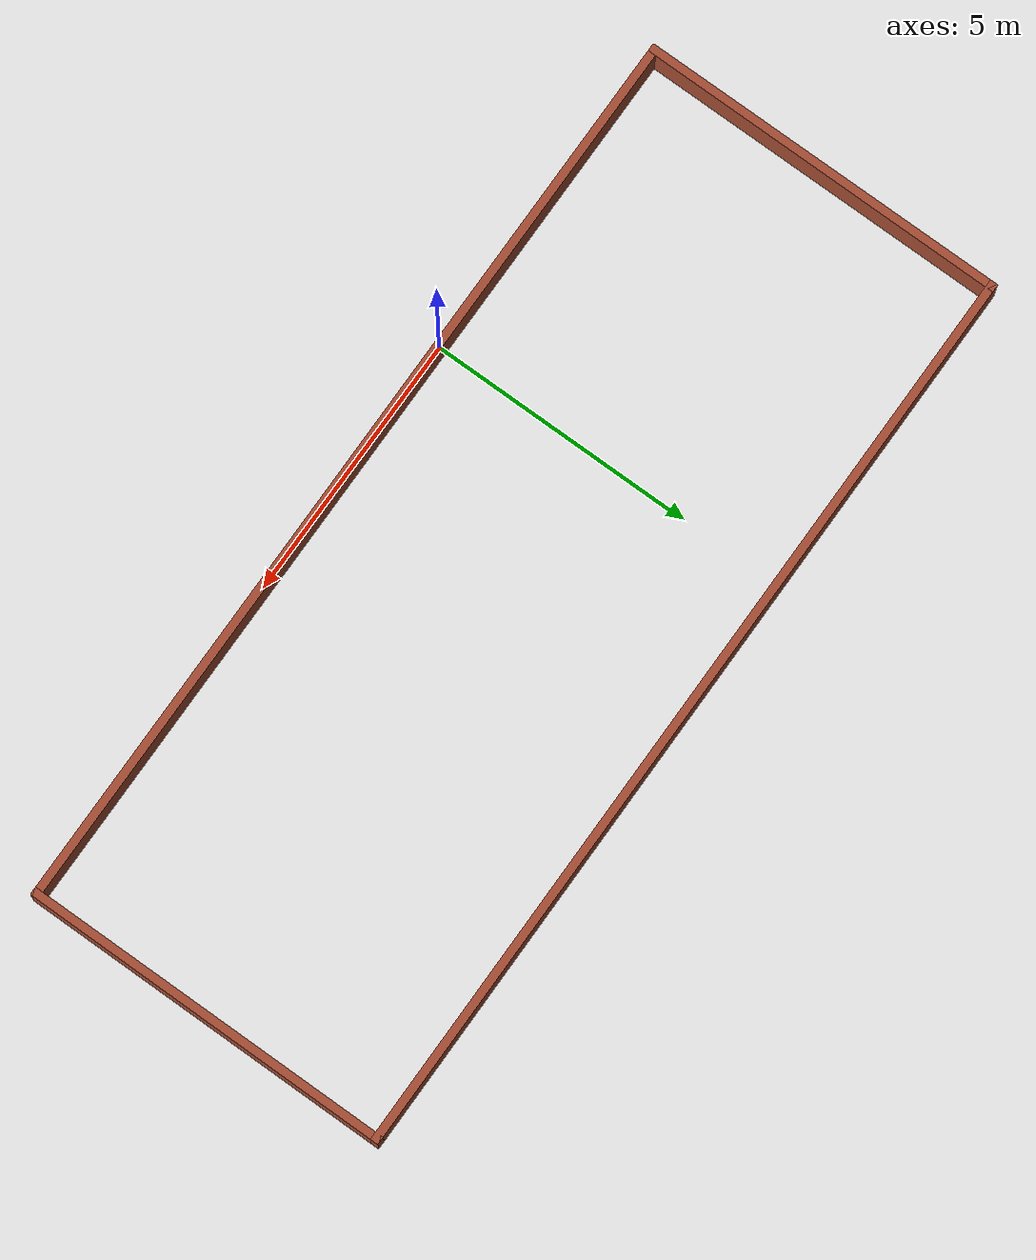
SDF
<?xml version='1.0'?>
<sdf version='1.6'>
  <model name='Arena'>
    <pose frame=''>2.663 3.5 0 0 -0 0</pose>
    <link name='Wall_1'>
      <collision name='Wall_1_Collision'>
        <geometry>
          <box>
            <size>7 0.15 1</size>
          </box>
        </geometry>
        <pose frame=''>0 0 0.5 0 -0 0</pose>
      </collision>
      <visual name='Wall_1_Visual'>
        <pose frame=''>0 0 0.5 0 -0 0</pose>
        <geometry>
          <box>
            <size>7 0.15 1</size>
          </box>
        </geometry>
        <material>
          <script>
            <uri>file://media/materials/scripts/gazebo.material</uri>
            <name>Gazebo/Bricks</name>
          </script>
          <ambient>0.760784 0.662745 0.627451 1</ambient>
        </material>
      </visual>
      <pose frame=''>-8.675 0 0 0 0 -1.5708</pose>
    </link>
    <link name='Wall_2'>
      <collision name='Wall_2_Collision'>
        <geometry>
          <box>
            <size>17.5 0.15 1</size>
          </box>
        </geometry>
        <pose frame=''>0 0 0.5 0 -0 0</pose>
      </collision>
      <visual name='Wall_2_Visual'>
        <pose frame=''>0 0 0.5 0 -0 0</pose>
        <geometry>
          <box>
            <size>17.5 0.15 1</size>
          </box>
        </geometry>
        <material>
          <script>
            <uri>file://media/materials/scripts/gazebo.material</uri>
            <name>Gazebo/Bricks</name>
          </script>
          <ambient>0.760784 0.662745 0.627451 1</ambient>
        </material>
      </visual>
      <pose frame=''>0 -3.425 0 0 -0 0</pose>
    </link>
    <link name='Wall_3'>
      <collision name='Wall_3_Collision'>
        <geometry>
          <box>
            <size>7 0.15 1</size>
          </box>
        </geometry>
        <pose frame=''>0 0 0.5 0 -0 0</pose>
      </collision>
      <visual name='Wall_3_Visual'>
        <pose frame=''>0 0 0.5 0 -0 0</pose>
        <geometry>
          <box>
            <size>7 0.15 1</size>
          </box>
        </geometry>
        <material>
          <script>
            <uri>file://media/materials/scripts/gazebo.material</uri>
            <name>Gazebo/Bricks</name>
          </script>
          <ambient>0.760784 0.662745 0.627451 1</ambient>
        </material>
      </visual>
      <pose frame=''>8.675 0 0 0 -0 1.5708</pose>
    </link>
    <link name='Wall_4'>
      <collision name='Wall_4_Collision'>
        <geometry>
          <box>
            <size>17.5 0.15 1</size>
          </box>
        </geometry>
        <pose frame=''>0 0 0.5 0 -0 0</pose>
      </collision>
      <visual name='Wall_4_Visual'>
        <pose frame=''>0 0 0.5 0 -0 0</pose>
        <geometry>
          <box>
            <size>17.5 0.15 1</size>
          </box>
        </geometry>
        <material>
          <script>
            <uri>file://media/materials/scripts/gazebo.material</uri>
            <name>Gazebo/Bricks</name>
          </script>
          <ambient>0.760784 0.662745 0.627451 1</ambient>
        </material>
      </visual>
      <pose frame=''>0 3.425 0 0 -0 3.14159</pose>
    </link>
    <static>1</static>
  </model>
</sdf>
